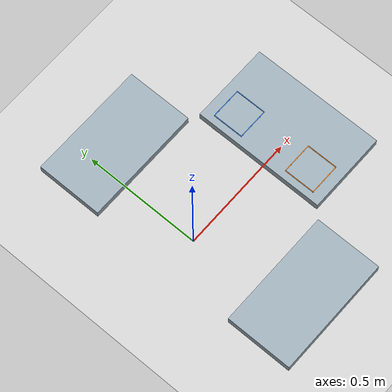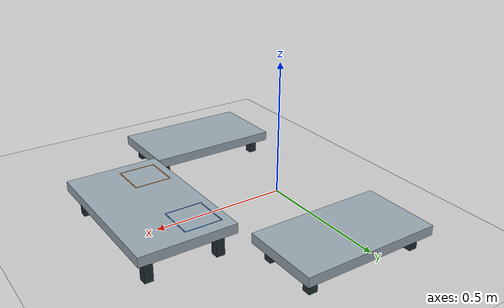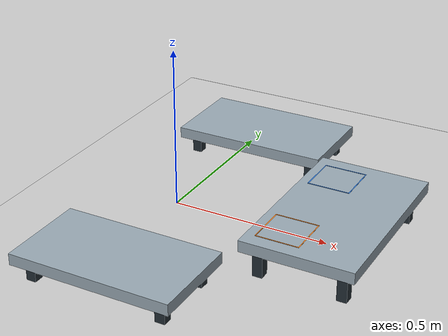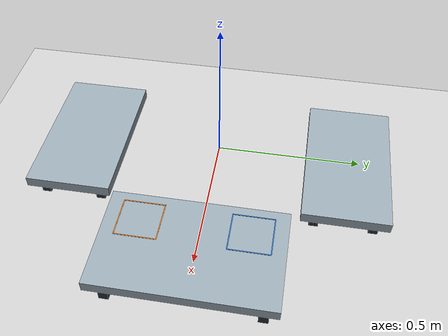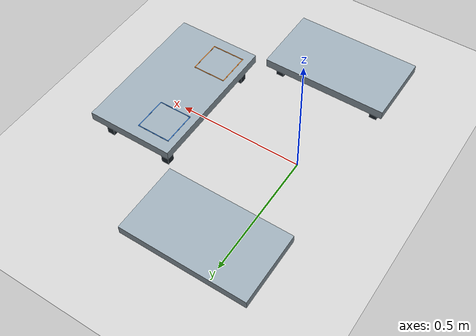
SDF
<?xml version='1.0' encoding='UTF-8'?>
<sdf version="1.6">
  <world name="handarm_ground_workspace">
    <gravity>0 0 -9.81</gravity>
    <physics name="ode" type="ode">
      <max_step_size>0.001</max_step_size>
      <real_time_update_rate>1000</real_time_update_rate>
      <ode>
        <solver>
          <type>quick</type>
          <iters>100</iters>
          <sor>1.3</sor>
        </solver>
        <constraints>
          <cfm>0.0</cfm>
          <erp>0.2</erp>
          <contact_max_correcting_vel>0.1</contact_max_correcting_vel>
          <contact_surface_layer>0.001</contact_surface_layer>
        </constraints>
      </ode>
    </physics>
    <include>
      <uri>model://ground_plane</uri>
      <pose>0 0 0 0 0 0</pose>
    </include>
    <include>
      <uri>model://sun</uri>
    </include>
    <scene>
      <ambient>0.5 0.5 0.5 1</ambient>
      <background>0.7 0.7 0.7 1</background>
    </scene>
    <gui fullscreen="0">
      <camera name="user_camera">
        <pose>1.6 -1.05 1.45 0 0.615737453 2.480549485</pose>
        <view_controller>orbit</view_controller>
        <projection_type>perspective</projection_type>
      </camera>
      <plugin name="handarm_gui_render_rate_limiter" filename="libhandarm_gui_render_rate_limiter_plugin.so">
        <renderRateHz>15.0</renderRateHz>
      </plugin>
    </gui>
    <model name="work_table">
      <static>true</static>
      <pose>0.53 0 0.1025 0 0 0</pose>
      <link name="table_link">
        <collision name="collision_0">
          <pose>0 0 0 0 0 0</pose>
          <geometry>
            <box>
              <size>0.34 0.56 0.035</size>
            </box>
          </geometry>
          <surface>
            <friction>
              <ode>
                <mu>1.0</mu>
                <mu2>1.0</mu2>
              </ode>
            </friction>
          </surface>
        </collision>
        <visual name="surface_0">
          <pose>0 0 0 0 0 0</pose>
          <geometry>
            <box>
              <size>0.34 0.56 0.035</size>
            </box>
          </geometry>
          <material>
            <ambient>0.60 0.66 0.70 1</ambient>
            <diffuse>0.60 0.66 0.70 1</diffuse>
          </material>
        </visual>
        <collision name="collision_1">
          <pose>-0.125 -0.235 -0.06 0 0 0</pose>
          <geometry>
            <box>
              <size>0.03 0.03 0.085</size>
            </box>
          </geometry>
          <surface>
            <friction>
              <ode>
                <mu>1.0</mu>
                <mu2>1.0</mu2>
              </ode>
            </friction>
          </surface>
        </collision>
        <visual name="surface_1">
          <pose>-0.125 -0.235 -0.06 0 0 0</pose>
          <geometry>
            <box>
              <size>0.03 0.03 0.085</size>
            </box>
          </geometry>
          <material>
            <ambient>0.14 0.18 0.21 1</ambient>
            <diffuse>0.14 0.18 0.21 1</diffuse>
          </material>
        </visual>
        <collision name="collision_2">
          <pose>-0.125 0.235 -0.06 0 0 0</pose>
          <geometry>
            <box>
              <size>0.03 0.03 0.085</size>
            </box>
          </geometry>
          <surface>
            <friction>
              <ode>
                <mu>1.0</mu>
                <mu2>1.0</mu2>
              </ode>
            </friction>
          </surface>
        </collision>
        <visual name="surface_2">
          <pose>-0.125 0.235 -0.06 0 0 0</pose>
          <geometry>
            <box>
              <size>0.03 0.03 0.085</size>
            </box>
          </geometry>
          <material>
            <ambient>0.14 0.18 0.21 1</ambient>
            <diffuse>0.14 0.18 0.21 1</diffuse>
          </material>
        </visual>
        <collision name="collision_3">
          <pose>0.125 -0.235 -0.06 0 0 0</pose>
          <geometry>
            <box>
              <size>0.03 0.03 0.085</size>
            </box>
          </geometry>
          <surface>
            <friction>
              <ode>
                <mu>1.0</mu>
                <mu2>1.0</mu2>
              </ode>
            </friction>
          </surface>
        </collision>
        <visual name="surface_3">
          <pose>0.125 -0.235 -0.06 0 0 0</pose>
          <geometry>
            <box>
              <size>0.03 0.03 0.085</size>
            </box>
          </geometry>
          <material>
            <ambient>0.14 0.18 0.21 1</ambient>
            <diffuse>0.14 0.18 0.21 1</diffuse>
          </material>
        </visual>
        <collision name="collision_4">
          <pose>0.125 0.235 -0.06 0 0 0</pose>
          <geometry>
            <box>
              <size>0.03 0.03 0.085</size>
            </box>
          </geometry>
          <surface>
            <friction>
              <ode>
                <mu>1.0</mu>
                <mu2>1.0</mu2>
              </ode>
            </friction>
          </surface>
        </collision>
        <visual name="surface_4">
          <pose>0.125 0.235 -0.06 0 0 0</pose>
          <geometry>
            <box>
              <size>0.03 0.03 0.085</size>
            </box>
          </geometry>
          <material>
            <ambient>0.14 0.18 0.21 1</ambient>
            <diffuse>0.14 0.18 0.21 1</diffuse>
          </material>
        </visual>
        <visual name="left_placement_0">
          <pose>-0.14 -0.17 0.0178 0.0 0.0 0.0</pose>
          <geometry>
            <box>
              <size>0.003 0.133 0.0005</size>
            </box>
          </geometry>
          <material>
            <ambient>0.96 0.52 0.13 1</ambient>
            <diffuse>0.96 0.52 0.13 1</diffuse>
          </material>
        </visual>
        <visual name="left_placement_1">
          <pose>-0.010000000000000002 -0.17 0.0178 0.0 0.0 0.0</pose>
          <geometry>
            <box>
              <size>0.003 0.133 0.0005</size>
            </box>
          </geometry>
          <material>
            <ambient>0.96 0.52 0.13 1</ambient>
            <diffuse>0.96 0.52 0.13 1</diffuse>
          </material>
        </visual>
        <visual name="left_placement_2">
          <pose>-0.07500000000000001 -0.235 0.0178 0.0 0.0 0.0</pose>
          <geometry>
            <box>
              <size>0.133 0.003 0.0005</size>
            </box>
          </geometry>
          <material>
            <ambient>0.96 0.52 0.13 1</ambient>
            <diffuse>0.96 0.52 0.13 1</diffuse>
          </material>
        </visual>
        <visual name="left_placement_3">
          <pose>-0.07500000000000001 -0.105 0.0178 0.0 0.0 0.0</pose>
          <geometry>
            <box>
              <size>0.133 0.003 0.0005</size>
            </box>
          </geometry>
          <material>
            <ambient>0.96 0.52 0.13 1</ambient>
            <diffuse>0.96 0.52 0.13 1</diffuse>
          </material>
        </visual>
        <visual name="right_placement_0">
          <pose>-0.14 0.17 0.0178 0.0 0.0 0.0</pose>
          <geometry>
            <box>
              <size>0.003 0.133 0.0005</size>
            </box>
          </geometry>
          <material>
            <ambient>0.18 0.48 0.86 1</ambient>
            <diffuse>0.18 0.48 0.86 1</diffuse>
          </material>
        </visual>
        <visual name="right_placement_1">
          <pose>-0.010000000000000002 0.17 0.0178 0.0 0.0 0.0</pose>
          <geometry>
            <box>
              <size>0.003 0.133 0.0005</size>
            </box>
          </geometry>
          <material>
            <ambient>0.18 0.48 0.86 1</ambient>
            <diffuse>0.18 0.48 0.86 1</diffuse>
          </material>
        </visual>
        <visual name="right_placement_2">
          <pose>-0.07500000000000001 0.105 0.0178 0.0 0.0 0.0</pose>
          <geometry>
            <box>
              <size>0.133 0.003 0.0005</size>
            </box>
          </geometry>
          <material>
            <ambient>0.18 0.48 0.86 1</ambient>
            <diffuse>0.18 0.48 0.86 1</diffuse>
          </material>
        </visual>
        <visual name="right_placement_3">
          <pose>-0.07500000000000001 0.235 0.0178 0.0 0.0 0.0</pose>
          <geometry>
            <box>
              <size>0.133 0.003 0.0005</size>
            </box>
          </geometry>
          <material>
            <ambient>0.18 0.48 0.86 1</ambient>
            <diffuse>0.18 0.48 0.86 1</diffuse>
          </material>
        </visual>
      </link>
    </model>
    <model name="left_work_table">
      <static>true</static>
      <pose>0.08 -0.45 0.0725 0 0 1.570796327</pose>
      <link name="table_link">
        <collision name="collision_0">
          <pose>0 0 0 0 0 0</pose>
          <geometry>
            <box>
              <size>0.28 0.5 0.035</size>
            </box>
          </geometry>
          <surface>
            <friction>
              <ode>
                <mu>1.0</mu>
                <mu2>1.0</mu2>
              </ode>
            </friction>
          </surface>
        </collision>
        <visual name="surface_0">
          <pose>0 0 0 0 0 0</pose>
          <geometry>
            <box>
              <size>0.28 0.5 0.035</size>
            </box>
          </geometry>
          <material>
            <ambient>0.60 0.66 0.70 1</ambient>
            <diffuse>0.60 0.66 0.70 1</diffuse>
          </material>
        </visual>
        <collision name="collision_1">
          <pose>-0.095 -0.205 -0.045 0 0 0</pose>
          <geometry>
            <box>
              <size>0.03 0.03 0.055</size>
            </box>
          </geometry>
          <surface>
            <friction>
              <ode>
                <mu>1.0</mu>
                <mu2>1.0</mu2>
              </ode>
            </friction>
          </surface>
        </collision>
        <visual name="surface_1">
          <pose>-0.095 -0.205 -0.045 0 0 0</pose>
          <geometry>
            <box>
              <size>0.03 0.03 0.055</size>
            </box>
          </geometry>
          <material>
            <ambient>0.14 0.18 0.21 1</ambient>
            <diffuse>0.14 0.18 0.21 1</diffuse>
          </material>
        </visual>
        <collision name="collision_2">
          <pose>-0.095 0.205 -0.045 0 0 0</pose>
          <geometry>
            <box>
              <size>0.03 0.03 0.055</size>
            </box>
          </geometry>
          <surface>
            <friction>
              <ode>
                <mu>1.0</mu>
                <mu2>1.0</mu2>
              </ode>
            </friction>
          </surface>
        </collision>
        <visual name="surface_2">
          <pose>-0.095 0.205 -0.045 0 0 0</pose>
          <geometry>
            <box>
              <size>0.03 0.03 0.055</size>
            </box>
          </geometry>
          <material>
            <ambient>0.14 0.18 0.21 1</ambient>
            <diffuse>0.14 0.18 0.21 1</diffuse>
          </material>
        </visual>
        <collision name="collision_3">
          <pose>0.095 -0.205 -0.045 0 0 0</pose>
          <geometry>
            <box>
              <size>0.03 0.03 0.055</size>
            </box>
          </geometry>
          <surface>
            <friction>
              <ode>
                <mu>1.0</mu>
                <mu2>1.0</mu2>
              </ode>
            </friction>
          </surface>
        </collision>
        <visual name="surface_3">
          <pose>0.095 -0.205 -0.045 0 0 0</pose>
          <geometry>
            <box>
              <size>0.03 0.03 0.055</size>
            </box>
          </geometry>
          <material>
            <ambient>0.14 0.18 0.21 1</ambient>
            <diffuse>0.14 0.18 0.21 1</diffuse>
          </material>
        </visual>
        <collision name="collision_4">
          <pose>0.095 0.205 -0.045 0 0 0</pose>
          <geometry>
            <box>
              <size>0.03 0.03 0.055</size>
            </box>
          </geometry>
          <surface>
            <friction>
              <ode>
                <mu>1.0</mu>
                <mu2>1.0</mu2>
              </ode>
            </friction>
          </surface>
        </collision>
        <visual name="surface_4">
          <pose>0.095 0.205 -0.045 0 0 0</pose>
          <geometry>
            <box>
              <size>0.03 0.03 0.055</size>
            </box>
          </geometry>
          <material>
            <ambient>0.14 0.18 0.21 1</ambient>
            <diffuse>0.14 0.18 0.21 1</diffuse>
          </material>
        </visual>
      </link>
    </model>
    <model name="right_work_table">
      <static>true</static>
      <pose>0.08 0.45 0.0725 0 0 1.570796327</pose>
      <link name="table_link">
        <collision name="collision_0">
          <pose>0 0 0 0 0 0</pose>
          <geometry>
            <box>
              <size>0.28 0.5 0.035</size>
            </box>
          </geometry>
          <surface>
            <friction>
              <ode>
                <mu>1.0</mu>
                <mu2>1.0</mu2>
              </ode>
            </friction>
          </surface>
        </collision>
        <visual name="surface_0">
          <pose>0 0 0 0 0 0</pose>
          <geometry>
            <box>
              <size>0.28 0.5 0.035</size>
            </box>
          </geometry>
          <material>
            <ambient>0.60 0.66 0.70 1</ambient>
            <diffuse>0.60 0.66 0.70 1</diffuse>
          </material>
        </visual>
        <collision name="collision_1">
          <pose>-0.095 -0.205 -0.045 0 0 0</pose>
          <geometry>
            <box>
              <size>0.03 0.03 0.055</size>
            </box>
          </geometry>
          <surface>
            <friction>
              <ode>
                <mu>1.0</mu>
                <mu2>1.0</mu2>
              </ode>
            </friction>
          </surface>
        </collision>
        <visual name="surface_1">
          <pose>-0.095 -0.205 -0.045 0 0 0</pose>
          <geometry>
            <box>
              <size>0.03 0.03 0.055</size>
            </box>
          </geometry>
          <material>
            <ambient>0.14 0.18 0.21 1</ambient>
            <diffuse>0.14 0.18 0.21 1</diffuse>
          </material>
        </visual>
        <collision name="collision_2">
          <pose>-0.095 0.205 -0.045 0 0 0</pose>
          <geometry>
            <box>
              <size>0.03 0.03 0.055</size>
            </box>
          </geometry>
          <surface>
            <friction>
              <ode>
                <mu>1.0</mu>
                <mu2>1.0</mu2>
              </ode>
            </friction>
          </surface>
        </collision>
        <visual name="surface_2">
          <pose>-0.095 0.205 -0.045 0 0 0</pose>
          <geometry>
            <box>
              <size>0.03 0.03 0.055</size>
            </box>
          </geometry>
          <material>
            <ambient>0.14 0.18 0.21 1</ambient>
            <diffuse>0.14 0.18 0.21 1</diffuse>
          </material>
        </visual>
        <collision name="collision_3">
          <pose>0.095 -0.205 -0.045 0 0 0</pose>
          <geometry>
            <box>
              <size>0.03 0.03 0.055</size>
            </box>
          </geometry>
          <surface>
            <friction>
              <ode>
                <mu>1.0</mu>
                <mu2>1.0</mu2>
              </ode>
            </friction>
          </surface>
        </collision>
        <visual name="surface_3">
          <pose>0.095 -0.205 -0.045 0 0 0</pose>
          <geometry>
            <box>
              <size>0.03 0.03 0.055</size>
            </box>
          </geometry>
          <material>
            <ambient>0.14 0.18 0.21 1</ambient>
            <diffuse>0.14 0.18 0.21 1</diffuse>
          </material>
        </visual>
        <collision name="collision_4">
          <pose>0.095 0.205 -0.045 0 0 0</pose>
          <geometry>
            <box>
              <size>0.03 0.03 0.055</size>
            </box>
          </geometry>
          <surface>
            <friction>
              <ode>
                <mu>1.0</mu>
                <mu2>1.0</mu2>
              </ode>
            </friction>
          </surface>
        </collision>
        <visual name="surface_4">
          <pose>0.095 0.205 -0.045 0 0 0</pose>
          <geometry>
            <box>
              <size>0.03 0.03 0.055</size>
            </box>
          </geometry>
          <material>
            <ambient>0.14 0.18 0.21 1</ambient>
            <diffuse>0.14 0.18 0.21 1</diffuse>
          </material>
        </visual>
      </link>
    </model>
    </world>
</sdf>
